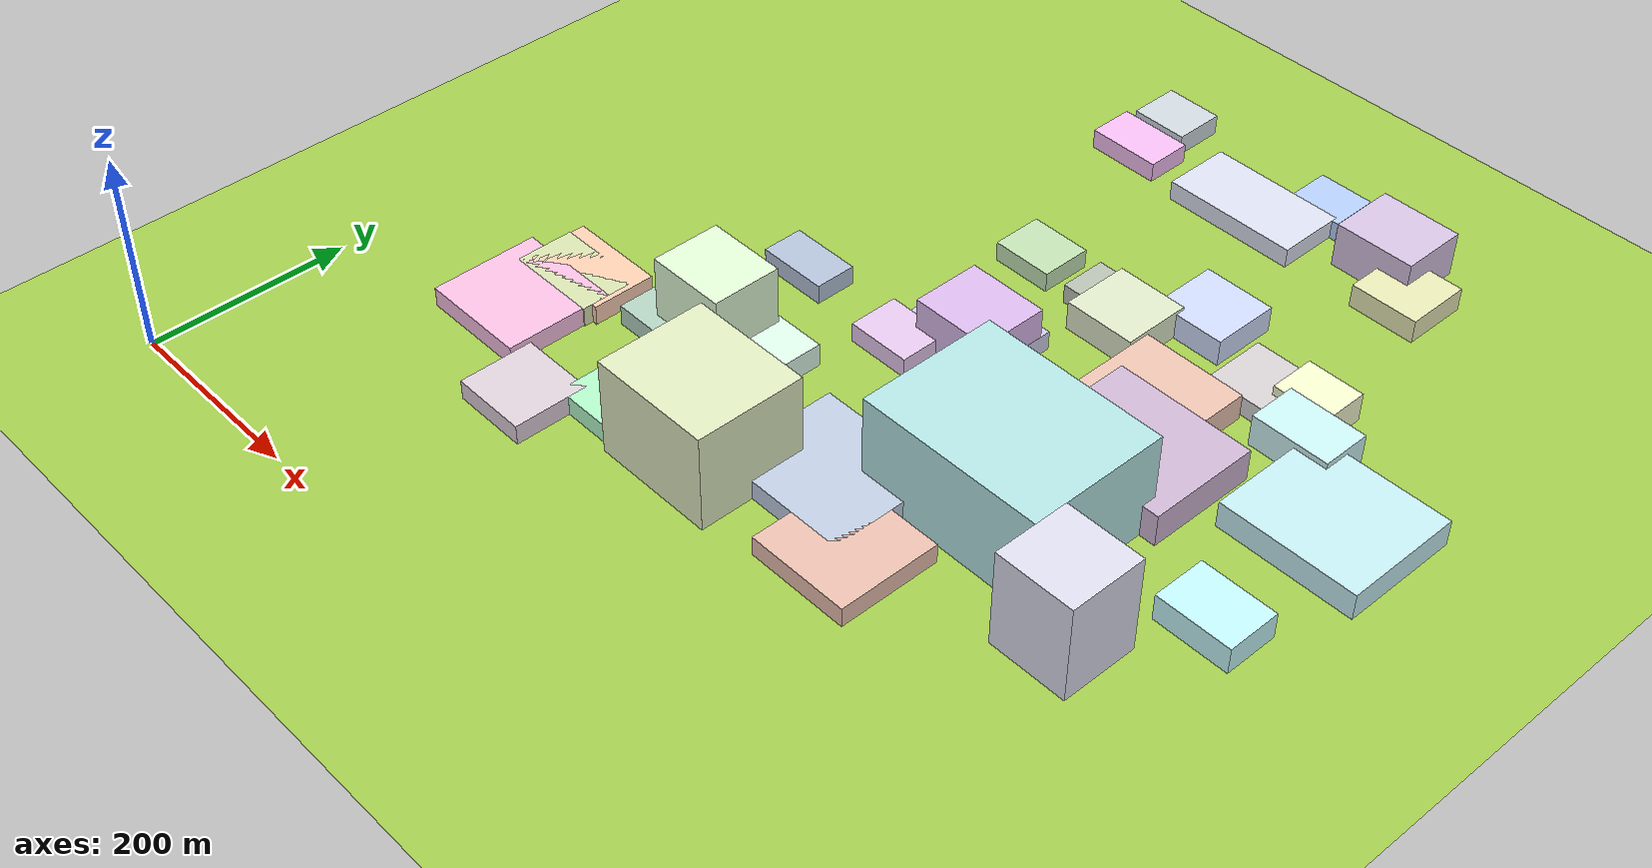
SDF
<sdf version="1.9">
 <world name="city_map">
  <model name="ground_plane">
   <static>1</static>
   <link name="link">
    <collision name="collision">
     <geometry><plane><normal>0 0 1</normal><size>11000 11000</size></plane></geometry>
    </collision>
    <visual name="visual">
     <geometry><plane><normal>0 0 1</normal><size>11000 11000</size></plane></geometry>
     <material>
      <ambient>0.551 0.712 0.210 1</ambient>
      <diffuse>0.651 0.812 0.310 1</diffuse>
      <specular>0.1 0.1 0.05 1</specular>
     </material>
    </visual>
   </link>
  </model>
  <model name="building_275326528">
   <static>1</static>
   <pose>652.0047871783397 411.6720349190558 50.0 0 0 0</pose>
   <link name="link">
    <collision name="collision">
     <geometry><box><size>191.66688077075656 144.67740000052487 100</size></box></geometry>
    </collision>
    <visual name="visual">
     <cast_shadows>false</cast_shadows>
     <geometry><box><size>191.66688077075656 144.67740000052487 100</size></box></geometry>
     <material>
      <ambient>0.613 0.806 0.804 1</ambient>
      <diffuse>0.713 0.906 0.904 1</diffuse>
      <specular>0.214 0.272 0.271 1</specular>
      <emissive>0.01 0.01 0.01 1</emissive>
     </material>
    </visual>
   </link>
  </model>
  <model name="building_575676335">
   <static>1</static>
   <pose>852.4566760520293 584.0225110146148 13.5 0 0 0</pose>
   <link name="link">
    <collision name="collision">
     <geometry><box><size>140.05822836040645 121.64490000031236 27.0</size></box></geometry>
    </collision>
    <visual name="visual">
     <cast_shadows>false</cast_shadows>
     <geometry><box><size>140.05822836040645 121.64490000031236 27.0</size></box></geometry>
     <material>
      <ambient>0.686 0.844 0.868 1</ambient>
      <diffuse>0.786 0.944 0.968 1</diffuse>
      <specular>0.236 0.283 0.290 1</specular>
      <emissive>0.01 0.01 0.01 1</emissive>
     </material>
    </visual>
   </link>
  </model>
  <model name="building_419141716">
   <static>1</static>
   <pose>536.9833360427868 324.3269374406973 10.0 0 0 0</pose>
   <link name="link">
    <collision name="collision">
     <geometry><box><size>137.9789111094327 120.35729999946199 20</size></box></geometry>
    </collision>
    <visual name="visual">
     <cast_shadows>false</cast_shadows>
     <geometry><box><size>137.9789111094327 120.35729999946199 20</size></box></geometry>
     <material>
      <ambient>0.661 0.711 0.799 1</ambient>
      <diffuse>0.761 0.811 0.899 1</diffuse>
      <specular>0.228 0.243 0.270 1</specular>
      <emissive>0.01 0.01 0.01 1</emissive>
     </material>
    </visual>
   </link>
  </model>
  <model name="building_902096098">
   <static>1</static>
   <pose>693.0946734494946 526.3163299355065 16.5 0 0 0</pose>
   <link name="link">
    <collision name="collision">
     <geometry><box><size>142.99019999973694 114.48458056829554 33.0</size></box></geometry>
    </collision>
    <visual name="visual">
     <cast_shadows>false</cast_shadows>
     <geometry><box><size>142.99019999973694 114.48458056829554 33.0</size></box></geometry>
     <material>
      <ambient>0.721 0.625 0.742 1</ambient>
      <diffuse>0.821 0.725 0.842 1</diffuse>
      <specular>0.246 0.217 0.253 1</specular>
      <emissive>0.01 0.01 0.01 1</emissive>
     </material>
    </visual>
   </link>
  </model>
  <model name="building_966841130">
   <static>1</static>
   <pose>441.1798952010892 265.31870304791613 50.0 0 0 0</pose>
   <link name="link">
    <collision name="collision">
     <geometry><box><size>127.42800000006582 110.9920351497185 100</size></box></geometry>
    </collision>
    <visual name="visual">
     <cast_shadows>false</cast_shadows>
     <geometry><box><size>127.42800000006582 110.9920351497185 100</size></box></geometry>
     <material>
      <ambient>0.789 0.833 0.669 1</ambient>
      <diffuse>0.889 0.933 0.769 1</diffuse>
      <specular>0.267 0.280 0.231 1</specular>
      <emissive>0.01 0.01 0.01 1</emissive>
     </material>
    </visual>
   </link>
  </model>
  <model name="building_702206993">
   <static>1</static>
   <pose>182.69310132723973 271.69853071972847 10.0 0 0 0</pose>
   <link name="link">
    <collision name="collision">
     <geometry><box><size>111.46620000045715 109.5266658567959 20</size></box></geometry>
    </collision>
    <visual name="visual">
     <cast_shadows>false</cast_shadows>
     <geometry><box><size>111.46620000045715 109.5266658567959 20</size></box></geometry>
     <material>
      <ambient>0.884 0.662 0.797 1</ambient>
      <diffuse>0.984 0.762 0.897 1</diffuse>
      <specular>0.295 0.229 0.269 1</specular>
      <emissive>0.01 0.01 0.01 1</emissive>
     </material>
    </visual>
   </link>
  </model>
  <model name="building_61047405">
   <static>1</static>
   <pose>606.0814287473174 274.1501650180409 10.0 0 0 0</pose>
   <link name="link">
    <collision name="collision">
     <geometry><box><size>105.94700679625066 104.22900000027369 20</size></box></geometry>
    </collision>
    <visual name="visual">
     <cast_shadows>false</cast_shadows>
     <geometry><box><size>105.94700679625066 104.22900000027369 20</size></box></geometry>
     <material>
      <ambient>0.831 0.661 0.600 1</ambient>
      <diffuse>0.931 0.761 0.700 1</diffuse>
      <specular>0.279 0.228 0.210 1</specular>
      <emissive>0.01 0.01 0.01 1</emissive>
     </material>
    </visual>
   </link>
  </model>
  <model name="building_209606344">
   <static>1</static>
   <pose>658.2171381642424 588.2058726472734 13.5 0 0 0</pose>
   <link name="link">
    <collision name="collision">
     <geometry><box><size>107.2149000004643 96.51246620827723 27.0</size></box></geometry>
    </collision>
    <visual name="visual">
     <cast_shadows>false</cast_shadows>
     <geometry><box><size>107.2149000004643 96.51246620827723 27.0</size></box></geometry>
     <material>
      <ambient>0.834 0.677 0.605 1</ambient>
      <diffuse>0.934 0.777 0.705 1</diffuse>
      <specular>0.280 0.233 0.212 1</specular>
      <emissive>0.01 0.01 0.01 1</emissive>
     </material>
    </visual>
   </link>
  </model>
  <model name="building_536639970">
   <static>1</static>
   <pose>364.33752345865037 371.92766637116205 12.0 0 0 0</pose>
   <link name="link">
    <collision name="collision">
     <geometry><box><size>110.16750000026576 90.9044046679697 24.0</size></box></geometry>
    </collision>
    <visual name="visual">
     <cast_shadows>false</cast_shadows>
     <geometry><box><size>110.16750000026576 90.9044046679697 24.0</size></box></geometry>
     <material>
      <ambient>0.785 0.892 0.827 1</ambient>
      <diffuse>0.885 0.992 0.927 1</diffuse>
      <specular>0.265 0.298 0.278 1</specular>
      <emissive>0.01 0.01 0.01 1</emissive>
     </material>
    </visual>
   </link>
  </model>
  <model name="building_559734145">
   <static>1</static>
   <pose>536.6181847601339 861.1402138032557 10.0 0 0 0</pose>
   <link name="link">
    <collision name="collision">
     <geometry><box><size>140.050314895162 71.06219999993613 20</size></box></geometry>
    </collision>
    <visual name="visual">
     <cast_shadows>false</cast_shadows>
     <geometry><box><size>140.050314895162 71.06219999993613 20</size></box></geometry>
     <material>
      <ambient>0.777 0.789 0.853 1</ambient>
      <diffuse>0.877 0.889 0.953 1</diffuse>
      <specular>0.263 0.267 0.286 1</specular>
      <emissive>0.01 0.01 0.01 1</emissive>
     </material>
    </visual>
   </link>
  </model>
  <model name="building_859535310">
   <static>1</static>
   <pose>487.6844546841733 541.7316221194371 10.0 0 0 0</pose>
   <link name="link">
    <collision name="collision">
     <geometry><box><size>103.20780000017038 79.18380338937726 20</size></box></geometry>
    </collision>
    <visual name="visual">
     <cast_shadows>false</cast_shadows>
     <geometry><box><size>103.20780000017038 79.18380338937726 20</size></box></geometry>
     <material>
      <ambient>0.726 0.716 0.831 1</ambient>
      <diffuse>0.826 0.816 0.931 1</diffuse>
      <specular>0.248 0.245 0.279 1</specular>
      <emissive>0.01 0.01 0.01 1</emissive>
     </material>
    </visual>
   </link>
  </model>
  <model name="building_519773669">
   <static>1</static>
   <pose>195.25220186784676 339.3078072382838 10.0 0 0 0</pose>
   <link name="link">
    <collision name="collision">
     <geometry><box><size>99.46187167118396 64.59090000002732 20</size></box></geometry>
    </collision>
    <visual name="visual">
     <cast_shadows>false</cast_shadows>
     <geometry><box><size>99.46187167118396 64.59090000002732 20</size></box></geometry>
     <material>
      <ambient>0.888 0.720 0.609 1</ambient>
      <diffuse>0.988 0.820 0.709 1</diffuse>
      <specular>0.296 0.246 0.213 1</specular>
      <emissive>0.01 0.01 0.01 1</emissive>
     </material>
    </visual>
   </link>
  </model>
  <model name="building_46898018">
   <static>1</static>
   <pose>787.7438364252484 334.80193670728954 50.0 0 0 0</pose>
   <link name="link">
    <collision name="collision">
     <geometry><box><size>80.39610510015534 78.56580000007796 100</size></box></geometry>
    </collision>
    <visual name="visual">
     <cast_shadows>false</cast_shadows>
     <geometry><box><size>80.39610510015534 78.56580000007796 100</size></box></geometry>
     <material>
      <ambient>0.782 0.780 0.846 1</ambient>
      <diffuse>0.882 0.880 0.946 1</diffuse>
      <specular>0.265 0.264 0.284 1</specular>
      <emissive>0.01 0.01 0.01 1</emissive>
     </material>
    </visual>
   </link>
  </model>
  <model name="building_121155798">
   <static>1</static>
   <pose>497.22890062907294 535.0971679956917 25.5 0 0 0</pose>
   <link name="link">
    <collision name="collision">
     <geometry><box><size>83.36100000011726 71.28260470227195 51.0</size></box></geometry>
    </collision>
    <visual name="visual">
     <cast_shadows>false</cast_shadows>
     <geometry><box><size>83.36100000011726 71.28260470227195 51.0</size></box></geometry>
     <material>
      <ambient>0.774 0.639 0.840 1</ambient>
      <diffuse>0.874 0.739 0.940 1</diffuse>
      <specular>0.262 0.222 0.282 1</specular>
      <emissive>0.01 0.01 0.01 1</emissive>
     </material>
    </visual>
   </link>
  </model>
  <model name="building_156257553">
   <static>1</static>
   <pose>283.0692142114658 197.93303460453282 10.0 0 0 0</pose>
   <link name="link">
    <collision name="collision">
     <geometry><box><size>78.29801676173842 75.4689000001676 20</size></box></geometry>
    </collision>
    <visual name="visual">
     <cast_shadows>false</cast_shadows>
     <geometry><box><size>78.29801676173842 75.4689000001676 20</size></box></geometry>
     <material>
      <ambient>0.780 0.727 0.768 1</ambient>
      <diffuse>0.880 0.827 0.868 1</diffuse>
      <specular>0.264 0.248 0.260 1</specular>
      <emissive>0.01 0.01 0.01 1</emissive>
     </material>
    </visual>
   </link>
  </model>
  <model name="building_404261822">
   <static>1</static>
   <pose>331.3667346109878 375.87809732547527 42.129992021936154 0 0 0</pose>
   <link name="link">
    <collision name="collision">
     <geometry><box><size>82.25099999976493 70.8053692123355 84.25998404387231</size></box></geometry>
    </collision>
    <visual name="visual">
     <cast_shadows>false</cast_shadows>
     <geometry><box><size>82.25099999976493 70.8053692123355 84.25998404387231</size></box></geometry>
     <material>
      <ambient>0.795 0.899 0.748 1</ambient>
      <diffuse>0.895 0.999 0.848 1</diffuse>
      <specular>0.268 0.300 0.254 1</specular>
      <emissive>0.01 0.01 0.01 1</emissive>
     </material>
    </visual>
   </link>
  </model>
  <model name="building_661521081">
   <static>1</static>
   <pose>191.9564289129503 327.29641421395223 10.0 0 0 0</pose>
   <link name="link">
    <collision name="collision">
     <geometry><box><size>95.52473813445009 59.307300000590146 20</size></box></geometry>
    </collision>
    <visual name="visual">
     <cast_shadows>false</cast_shadows>
     <geometry><box><size>95.52473813445009 59.307300000590146 20</size></box></geometry>
     <material>
      <ambient>0.758 0.797 0.602 1</ambient>
      <diffuse>0.858 0.897 0.702 1</diffuse>
      <specular>0.257 0.269 0.211 1</specular>
      <emissive>0.01 0.01 0.01 1</emissive>
     </material>
    </visual>
   </link>
  </model>
  <model name="building_980794303">
   <static>1</static>
   <pose>673.3368304127137 895.5545754136824 23.144440965985215 0 0 0</pose>
   <link name="link">
    <collision name="collision">
     <geometry><box><size>81.95129999941742 69.08941688676153 46.28888193197043</size></box></geometry>
    </collision>
    <visual name="visual">
     <cast_shadows>false</cast_shadows>
     <geometry><box><size>81.95129999941742 69.08941688676153 46.28888193197043</size></box></geometry>
     <material>
      <ambient>0.749 0.677 0.799 1</ambient>
      <diffuse>0.849 0.777 0.899 1</diffuse>
      <specular>0.255 0.233 0.270 1</specular>
      <emissive>0.01 0.01 0.01 1</emissive>
     </material>
    </visual>
   </link>
  </model>
  <model name="building_439369661">
   <static>1</static>
   <pose>566.999823966664 649.4093473319709 15.0 0 0 0</pose>
   <link name="link">
    <collision name="collision">
     <geometry><box><size>73.7262000003085 70.51102616499556 30.0</size></box></geometry>
    </collision>
    <visual name="visual">
     <cast_shadows>false</cast_shadows>
     <geometry><box><size>73.7262000003085 70.51102616499556 30.0</size></box></geometry>
     <material>
      <ambient>0.784 0.826 0.699 1</ambient>
      <diffuse>0.884 0.926 0.799 1</diffuse>
      <specular>0.265 0.278 0.240 1</specular>
      <emissive>0.01 0.01 0.01 1</emissive>
     </material>
    </visual>
   </link>
  </model>
  <model name="building_174887368">
   <static>1</static>
   <pose>617.5898450888561 709.7602493609724 13.5 0 0 0</pose>
   <link name="link">
    <collision name="collision">
     <geometry><box><size>73.27109999972237 69.557830398734 27.0</size></box></geometry>
    </collision>
    <visual name="visual">
     <cast_shadows>false</cast_shadows>
     <geometry><box><size>73.27109999972237 69.557830398734 27.0</size></box></geometry>
     <material>
      <ambient>0.724 0.772 0.896 1</ambient>
      <diffuse>0.824 0.872 0.996 1</diffuse>
      <specular>0.247 0.262 0.299 1</specular>
      <emissive>0.01 0.01 0.01 1</emissive>
     </material>
    </visual>
   </link>
  </model>
  <model name="building_268727503">
   <static>1</static>
   <pose>715.3291335316914 859.6933454197155 12.0 0 0 0</pose>
   <link name="link">
    <collision name="collision">
     <geometry><box><size>69.44092650498033 67.59899999968866 24.0</size></box></geometry>
    </collision>
    <visual name="visual">
     <cast_shadows>false</cast_shadows>
     <geometry><box><size>69.44092650498033 67.59899999968866 24.0</size></box></geometry>
     <material>
      <ambient>0.824 0.824 0.630 1</ambient>
      <diffuse>0.924 0.924 0.730 1</diffuse>
      <specular>0.277 0.277 0.219 1</specular>
      <emissive>0.01 0.01 0.01 1</emissive>
     </material>
    </visual>
   </link>
  </model>
  <model name="building_220750057">
   <static>1</static>
   <pose>707.6267491553746 673.7219736346507 10.0 0 0 0</pose>
   <link name="link">
    <collision name="collision">
     <geometry><box><size>71.4223381981179 65.11259999981434 20</size></box></geometry>
    </collision>
    <visual name="visual">
     <cast_shadows>false</cast_shadows>
     <geometry><box><size>71.4223381981179 65.11259999981434 20</size></box></geometry>
     <material>
      <ambient>0.753 0.732 0.737 1</ambient>
      <diffuse>0.853 0.832 0.837 1</diffuse>
      <specular>0.256 0.250 0.251 1</specular>
      <emissive>0.01 0.01 0.01 1</emissive>
     </material>
    </visual>
   </link>
  </model>
  <model name="building_154931234">
   <static>1</static>
   <pose>854.7130441579044 435.784037012401 13.5 0 0 0</pose>
   <link name="link">
    <collision name="collision">
     <geometry><box><size>77.24753149415774 55.30019999950753 27.0</size></box></geometry>
    </collision>
    <visual name="visual">
     <cast_shadows>false</cast_shadows>
     <geometry><box><size>77.24753149415774 55.30019999950753 27.0</size></box></geometry>
     <material>
      <ambient>0.678 0.883 0.891 1</ambient>
      <diffuse>0.778 0.983 0.991 1</diffuse>
      <specular>0.233 0.295 0.297 1</specular>
      <emissive>0.01 0.01 0.01 1</emissive>
     </material>
    </visual>
   </link>
  </model>
  <model name="building_401080798">
   <static>1</static>
   <pose>777.3136238127123 642.9913350169811 16.5 0 0 0</pose>
   <link name="link">
    <collision name="collision">
     <geometry><box><size>79.70910000003073 50.75777086070461 33.0</size></box></geometry>
    </collision>
    <visual name="visual">
     <cast_shadows>false</cast_shadows>
     <geometry><box><size>79.70910000003073 50.75777086070461 33.0</size></box></geometry>
     <material>
      <ambient>0.714 0.871 0.876 1</ambient>
      <diffuse>0.814 0.971 0.976 1</diffuse>
      <specular>0.244 0.291 0.293 1</specular>
      <emissive>0.01 0.01 0.01 1</emissive>
     </material>
    </visual>
   </link>
  </model>
  <model name="building_693193429">
   <static>1</static>
   <pose>300.14358141826153 348.13533105294925 10.5 0 0 0</pose>
   <link name="link">
    <collision name="collision">
     <geometry><box><size>82.04010000045514 48.30250044302677 21.0</size></box></geometry>
    </collision>
    <visual name="visual">
     <cast_shadows>false</cast_shadows>
     <geometry><box><size>82.04010000045514 48.30250044302677 21.0</size></box></geometry>
     <material>
      <ambient>0.613 0.733 0.663 1</ambient>
      <diffuse>0.713 0.833 0.763 1</diffuse>
      <specular>0.214 0.250 0.229 1</specular>
      <emissive>0.01 0.01 0.01 1</emissive>
     </material>
    </visual>
   </link>
  </model>
  <model name="building_23838055">
   <static>1</static>
   <pose>604.1485970913934 518.2332218708249 10.0 0 0 0</pose>
   <link name="link">
    <collision name="collision">
     <geometry><box><size>61.125666314620105 60.98339999967095 20</size></box></geometry>
    </collision>
    <visual name="visual">
     <cast_shadows>false</cast_shadows>
     <geometry><box><size>61.125666314620105 60.98339999967095 20</size></box></geometry>
     <material>
      <ambient>0.756 0.743 0.614 1</ambient>
      <diffuse>0.856 0.843 0.714 1</diffuse>
      <specular>0.257 0.253 0.214 1</specular>
      <emissive>0.01 0.01 0.01 1</emissive>
     </material>
    </visual>
   </link>
  </model>
  <model name="building_527623502">
   <static>1</static>
   <pose>398.98292869869533 856.008776429735 10.0 0 0 0</pose>
   <link name="link">
    <collision name="collision">
     <geometry><box><size>75.8091898217963 46.631099999942194 20</size></box></geometry>
    </collision>
    <visual name="visual">
     <cast_shadows>false</cast_shadows>
     <geometry><box><size>75.8091898217963 46.631099999942194 20</size></box></geometry>
     <material>
      <ambient>0.871 0.660 0.863 1</ambient>
      <diffuse>0.971 0.760 0.963 1</diffuse>
      <specular>0.291 0.228 0.289 1</specular>
      <emissive>0.01 0.01 0.01 1</emissive>
     </material>
    </visual>
   </link>
  </model>
  <model name="building_469406136">
   <static>1</static>
   <pose>341.91353873311436 243.44699539764594 10.0 0 0 0</pose>
   <link name="link">
    <collision name="collision">
     <geometry><box><size>63.405120635137145 54.933899999959124 20</size></box></geometry>
    </collision>
    <visual name="visual">
     <cast_shadows>false</cast_shadows>
     <geometry><box><size>63.405120635137145 54.933899999959124 20</size></box></geometry>
     <material>
      <ambient>0.615 0.886 0.700 1</ambient>
      <diffuse>0.715 0.986 0.800 1</diffuse>
      <specular>0.214 0.296 0.240 1</specular>
      <emissive>0.01 0.01 0.01 1</emissive>
     </material>
    </visual>
   </link>
  </model>
  <model name="building_85015837">
   <static>1</static>
   <pose>447.55098220490254 486.3972989438512 10.0 0 0 0</pose>
   <link name="link">
    <collision name="collision">
     <geometry><box><size>66.02902923775969 51.1377000005524 20</size></box></geometry>
    </collision>
    <visual name="visual">
     <cast_shadows>false</cast_shadows>
     <geometry><box><size>66.02902923775969 51.1377000005524 20</size></box></geometry>
     <material>
      <ambient>0.817 0.699 0.844 1</ambient>
      <diffuse>0.917 0.799 0.944 1</diffuse>
      <specular>0.275 0.240 0.283 1</specular>
      <emissive>0.01 0.01 0.01 1</emissive>
     </material>
    </visual>
   </link>
  </model>
  <model name="building_592591278">
   <static>1</static>
   <pose>451.4751943067427 663.5330739308079 10.0 0 0 0</pose>
   <link name="link">
    <collision name="collision">
     <geometry><box><size>62.730940410419414 52.10340000000713 20</size></box></geometry>
    </collision>
    <visual name="visual">
     <cast_shadows>false</cast_shadows>
     <geometry><box><size>62.730940410419414 52.10340000000713 20</size></box></geometry>
     <material>
      <ambient>0.670 0.793 0.611 1</ambient>
      <diffuse>0.770 0.893 0.711 1</diffuse>
      <specular>0.231 0.268 0.213 1</specular>
      <emissive>0.01 0.01 0.01 1</emissive>
     </material>
    </visual>
   </link>
  </model>
  <model name="building_258910286">
   <static>1</static>
   <pose>536.1940508054682 662.6264528653319 10.0 0 0 0</pose>
   <link name="link">
    <collision name="collision">
     <geometry><box><size>65.11260000060304 48.06299953651887 20</size></box></geometry>
    </collision>
    <visual name="visual">
     <cast_shadows>false</cast_shadows>
     <geometry><box><size>65.11260000060304 48.06299953651887 20</size></box></geometry>
     <material>
      <ambient>0.633 0.668 0.611 1</ambient>
      <diffuse>0.733 0.768 0.711 1</diffuse>
      <specular>0.220 0.230 0.213 1</specular>
      <emissive>0.01 0.01 0.01 1</emissive>
     </material>
    </visual>
   </link>
  </model>
  <model name="building_79691113">
   <static>1</static>
   <pose>397.24088522951064 911.5073294133028 10.5 0 0 0</pose>
   <link name="link">
    <collision name="collision">
     <geometry><box><size>59.22982626646096 52.058999999488265 21.0</size></box></geometry>
    </collision>
    <visual name="visual">
     <cast_shadows>false</cast_shadows>
     <geometry><box><size>59.22982626646096 52.058999999488265 21.0</size></box></geometry>
     <material>
      <ambient>0.727 0.758 0.785 1</ambient>
      <diffuse>0.827 0.858 0.885 1</diffuse>
      <specular>0.248 0.257 0.265 1</specular>
      <emissive>0.01 0.01 0.01 1</emissive>
     </material>
    </visual>
   </link>
  </model>
  <model name="building_930943096">
   <static>1</static>
   <pose>320.7302440662104 494.30668851308974 10.0 0 0 0</pose>
   <link name="link">
    <collision name="collision">
     <geometry><box><size>72.22770000014833 41.96618626972879 20</size></box></geometry>
    </collision>
    <visual name="visual">
     <cast_shadows>false</cast_shadows>
     <geometry><box><size>72.22770000014833 41.96618626972879 20</size></box></geometry>
     <material>
      <ambient>0.611 0.670 0.761 1</ambient>
      <diffuse>0.711 0.770 0.861 1</diffuse>
      <specular>0.213 0.231 0.258 1</specular>
      <emissive>0.01 0.01 0.01 1</emissive>
     </material>
    </visual>
   </link>
  </model>
  <model name="building_560341533">
   <static>1</static>
   <pose>584.7897466118341 915.1168542571701 10.0 0 0 0</pose>
   <link name="link">
    <collision name="collision">
     <geometry><box><size>57.475800000482025 49.492077779430716 20</size></box></geometry>
    </collision>
    <visual name="visual">
     <cast_shadows>false</cast_shadows>
     <geometry><box><size>57.475800000482025 49.492077779430716 20</size></box></geometry>
     <material>
      <ambient>0.616 0.723 0.885 1</ambient>
      <diffuse>0.716 0.823 0.985 1</diffuse>
      <specular>0.215 0.247 0.296 1</specular>
      <emissive>0.01 0.01 0.01 1</emissive>
     </material>
    </visual>
   </link>
  </model>
  <model name="building_274582348">
   <static>1</static>
   <pose>752.7776002373581 686.518867039773 15.0 0 0 0</pose>
   <link name="link">
    <collision name="collision">
     <geometry><box><size>58.0034071514278 47.97419999986374 30.0</size></box></geometry>
    </collision>
    <visual name="visual">
     <cast_shadows>false</cast_shadows>
     <geometry><box><size>58.0034071514278 47.97419999986374 30.0</size></box></geometry>
     <material>
      <ambient>0.874 0.893 0.727 1</ambient>
      <diffuse>0.974 0.993 0.827 1</diffuse>
      <specular>0.292 0.298 0.248 1</specular>
      <emissive>0.01 0.01 0.01 1</emissive>
     </material>
    </visual>
   </link>
  </model>
 </world>
</sdf>
